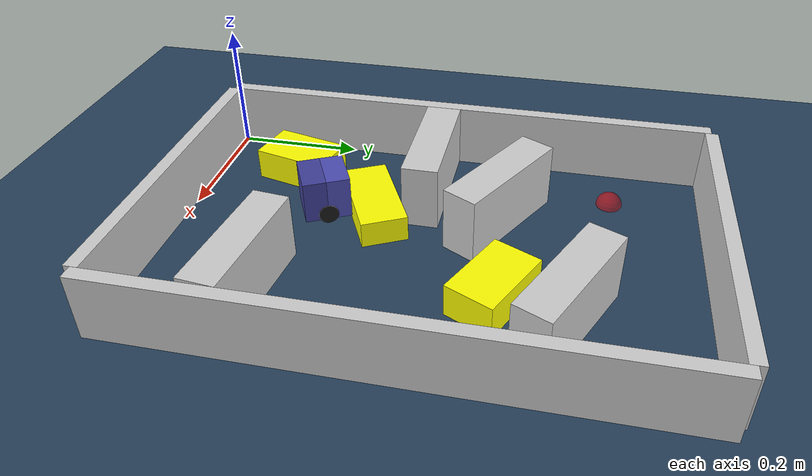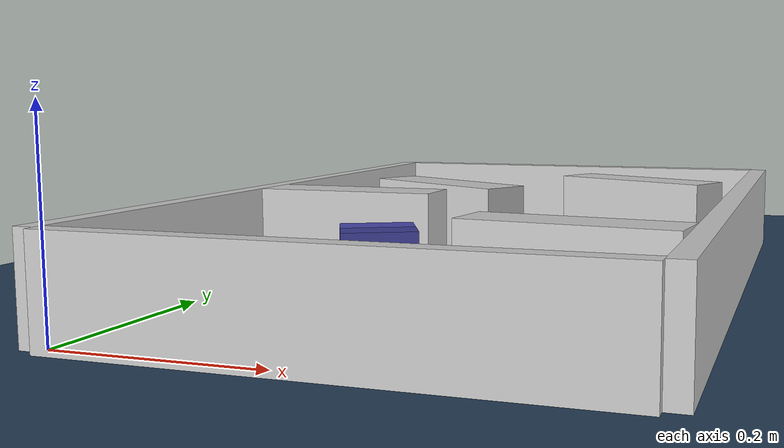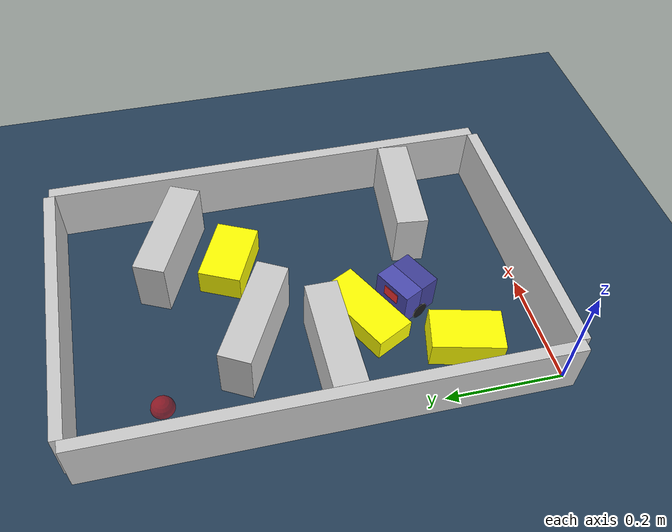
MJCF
<?xml version='1.0' encoding='utf-8'?>
<mujoco model="real_buildable">
  <compiler angle="degree" />
  <option timestep="0.002" integrator="implicitfast" iterations="100" cone="elliptic" />
  <default>
    <geom density="1" />
  </default>
  <asset>
    <texture builtin="gradient" height="3072" rgb1="0.3 0.5 0.7" rgb2="0 0 0" type="skybox" width="512" />
    <texture builtin="checker" height="300" mark="edge" markrgb="0.8 0.8 0.8" name="groundplane" rgb1="0.2 0.3 0.4" rgb2="0.1 0.2 0.3" type="2d" width="300" />
    <material name="groundplane" reflectance="0.2" texrepeat="5 5" texture="groundplane" texuniform="true" />
  </asset>
  <worldbody>
    <light dir="0 0 -1" directional="true" pos="0 0 1.5" />
    <geom name="floor" type="plane" condim="4" friction="0.5 0.005 0.001" material="groundplane" size="0 0 0.05" />
    <body name="walls">
      <geom name="wall_boundary_left" type="box" condim="4" friction="1.0 0.005 0.0001" rgba="0.8 0.8 0.8 1" pos="-0.010000 0.387500 0.050000" euler="0 0 0.000000" size="0.010000 0.397500 0.050000" />
      <geom name="wall_boundary_right" type="box" condim="4" friction="1.0 0.005 0.0001" rgba="0.8 0.8 0.8 1" pos="0.500000 0.387500 0.050000" euler="0 0 0.000000" size="0.010000 0.397500 0.050000" />
      <geom name="wall_boundary_bottom" type="box" condim="4" friction="1.0 0.005 0.0001" rgba="0.8 0.8 0.8 1" pos="0.245000 -0.010000 0.050000" euler="0 0 0.000000" size="0.245000 0.010000 0.050000" />
      <geom name="wall_boundary_top" type="box" condim="4" friction="1.0 0.005 0.0001" rgba="0.8 0.8 0.8 1" pos="0.245000 0.785000 0.050000" euler="0 0 0.000000" size="0.245000 0.010000 0.050000" />
      <geom name="wall_inner_1" type="box" condim="4" friction="1.0 0.005 0.0001" rgba="0.8 0.8 0.8 1" pos="0.390121 0.160942 0.050000" euler="0 0 173.870925" size="0.097500 0.027500 0.050000" />
      <geom name="wall_inner_2" type="box" condim="4" friction="1.0 0.005 0.0001" rgba="0.8 0.8 0.8 1" pos="0.097533 0.359398 0.050000" euler="0 0 179.931953" size="0.097500 0.027500 0.050000" />
      <geom name="wall_inner_3" type="box" condim="4" friction="1.0 0.005 0.0001" rgba="0.8 0.8 0.8 1" pos="0.165000 0.474000 0.050000" euler="0 0 151.300000" size="0.097500 0.027500 0.050000" />
      <geom name="wall_inner_4" type="box" condim="4" friction="1.0 0.005 0.0001" rgba="0.8 0.8 0.8 1" pos="0.372000 0.588000 0.050000" euler="0 0 154.700000" size="0.097500 0.027500 0.050000" />
    </body>
    <body name="car" pos="0.192975047559726 0.21089119693256347 0.01" quat="0.52320804108213581 0 0 0.85220499044947751">
      <freejoint name="car_freejoint" />
      <inertial pos="0 0 0.0375" mass="0.35" diaginertia="0.000266 0.000266 0.000286" />
      <geom name="front_chassis_collision" type="box" pos="0.0175 0 0.0375" size="0.0175 0.035 0.0325" rgba="0.3 0.3 0.7 1" />
      <geom name="rear_chassis_collision" type="box" pos="-0.0175 0 0.0375" size="0.0175 0.035 0.0325" rgba="0.25 0.25 0.6 1" />
      <geom name="front_marker" type="box" pos="0.034 0 0.0505" size="0.002 0.015 0.01" rgba="1 0.2 0.2 1" contype="0" conaffinity="0" />
      <body name="rear_support_body" pos="-0.03 0 0.0025">
        <joint name="rear_caster_joint" type="ball" damping="0.0001" />
        <inertial pos="0 0 0" mass="0.025" diaginertia="0.000001 0.000001 0.000001" />
        <geom name="rear_support" type="sphere" pos="0 0 0" size="0.0025" friction="0 0 0" rgba="0.7 0.1 0.1 1" />
      </body>
      <body name="front_support_body" pos="0.03 0 0.0025">
        <joint name="front_caster_joint" type="ball" damping="0.0001" />
        <inertial pos="0 0 0" mass="0.025" diaginertia="0.000001 0.000001 0.000001" />
        <geom name="front_support" type="sphere" pos="0 0 0" size="0.0025" friction="0 0 0" rgba="0.1 0.7 0.1 1" />
      </body>
      <body name="left_wheel" pos="0 0.0375 0.015">
        <inertial pos="0 0 0" mass="0.05" diaginertia="0.000003 0.000006 0.000003" />
        <joint name="left_wheel_joint" type="hinge" axis="0 1 0" damping="0.01" armature="0.0001" />
        <geom name="left_wheel_collision" type="cylinder" size="0.015 0.0005" euler="90 0 0" rgba="0.1 0.1 0.1 1" />
      </body>
      <body name="right_wheel" pos="0 -0.0375 0.015">
        <inertial pos="0 0 0" mass="0.05" diaginertia="0.000003 0.000006 0.000003" />
        <joint name="right_wheel_joint" type="hinge" axis="0 1 0" damping="0.01" armature="0.0001" />
        <geom name="right_wheel_collision" type="cylinder" size="0.015 0.0005" euler="90 0 0" rgba="0.1 0.1 0.1 1" />
      </body>
    </body>
    <body name="obstacle_0_movable">
      <geom name="obstacle_0_movable" condim="4" pos="0.17983812300844373 0.2845986926399463 0.02" friction="1 0.005 0.0001" rgba="1 1 0 1" size="0.035000 0.075000 0.020000" type="box" mass="0.1" quat="0.52124311205551377 0 0 0.85340823650506392" />
      <joint type="free" />
    </body>
    <body name="obstacle_1_movable">
      <geom name="obstacle_1_movable" condim="4" pos="0.33900000000000025 0.48999999999999982 0.025000000000000001" friction="1 0.005 0.0001" rgba="1 1 0 1" size="0.037500 0.060000 0.025000" type="box" mass="0.1" quat="0.84619316612756401 0 0 0.53287627607072996" />
      <joint type="free" />
    </body>
    <body name="obstacle_2_movable">
      <geom name="obstacle_2_movable" condim="4" pos="0.090706999999999816 0.138131 0.025000000000000001" friction="1 0.005 0.0001" rgba="1 1 0 1" size="0.037500 0.060000 0.025000" type="box" mass="0.1" quat="0.11836637832926457 0 0 0.99296998971832651" />
      <joint type="free" />
    </body>
    <site name="goal" type="sphere" pos="0.080000 0.640000 0.0" size="0.02" rgba="1 0 0 0.5" />
  </worldbody>
  <actuator>
    <velocity name="left_wheel_drive" joint="left_wheel_joint" ctrlrange="-25 25" kv="0.75" forcerange="-0.5 0.5" />
    <velocity name="right_wheel_drive" joint="right_wheel_joint" ctrlrange="-25 25" kv="0.75" forcerange="-0.5 0.5" />
  </actuator>
</mujoco>
